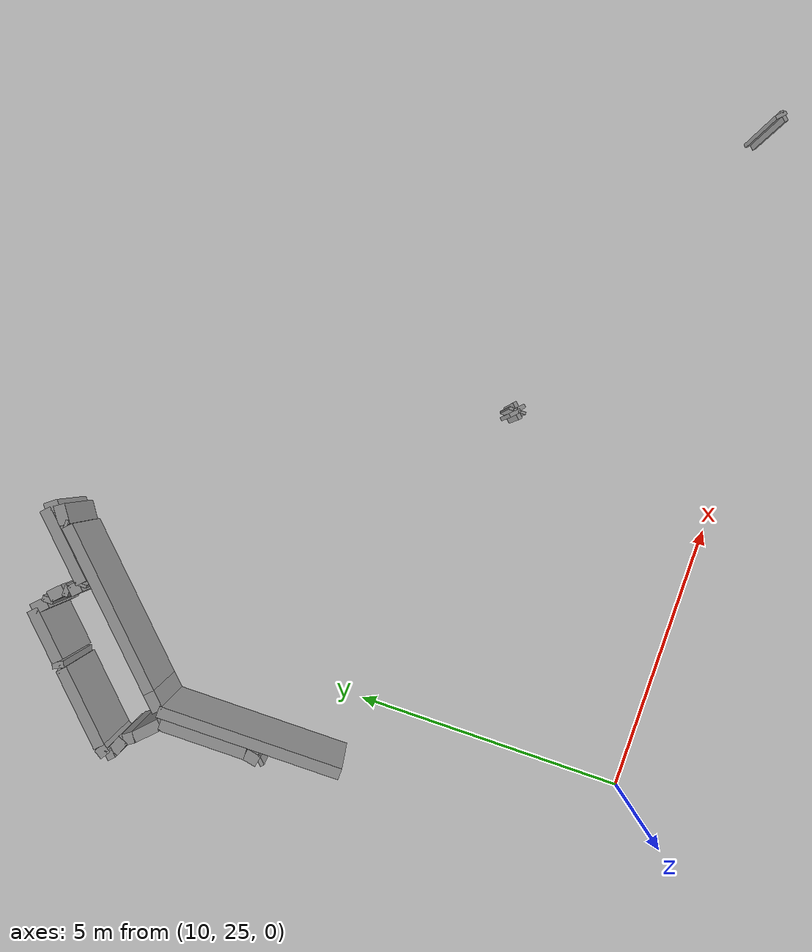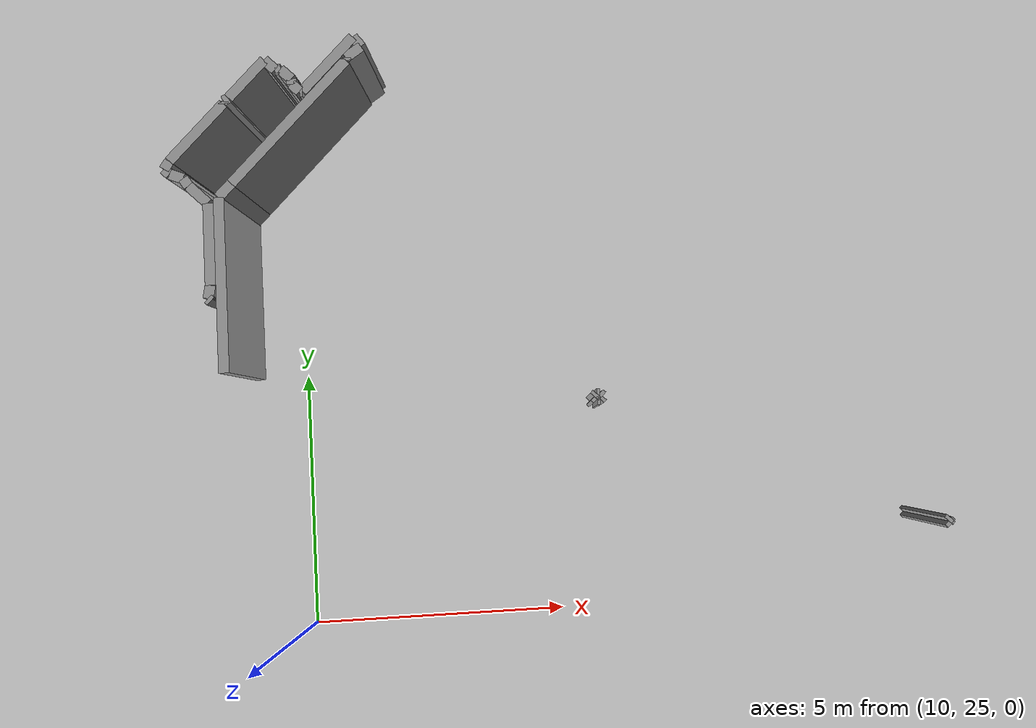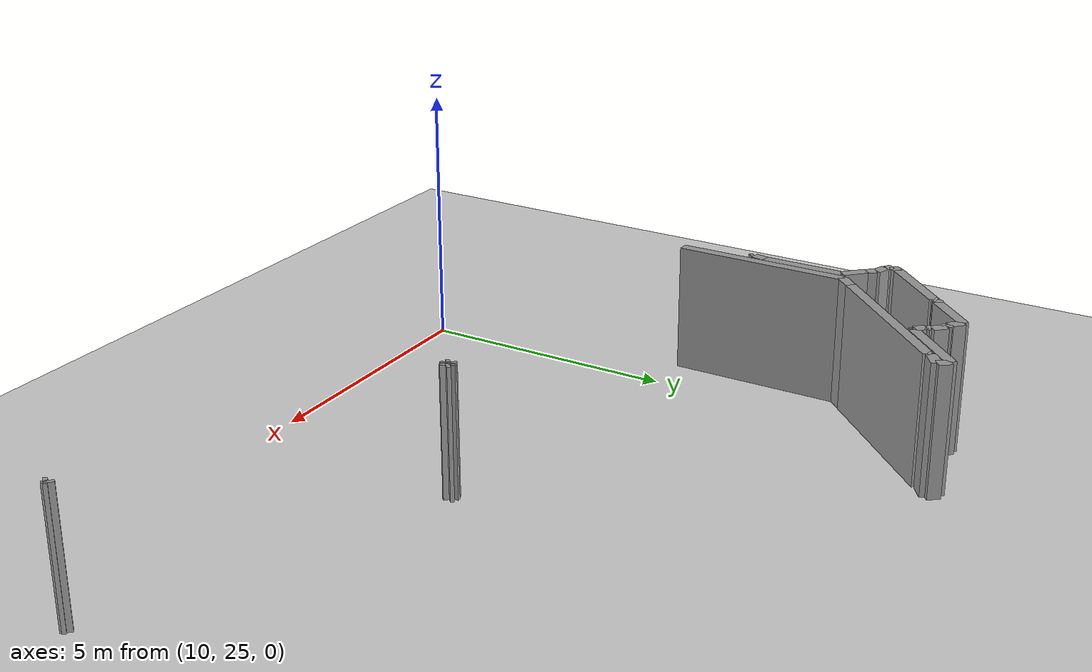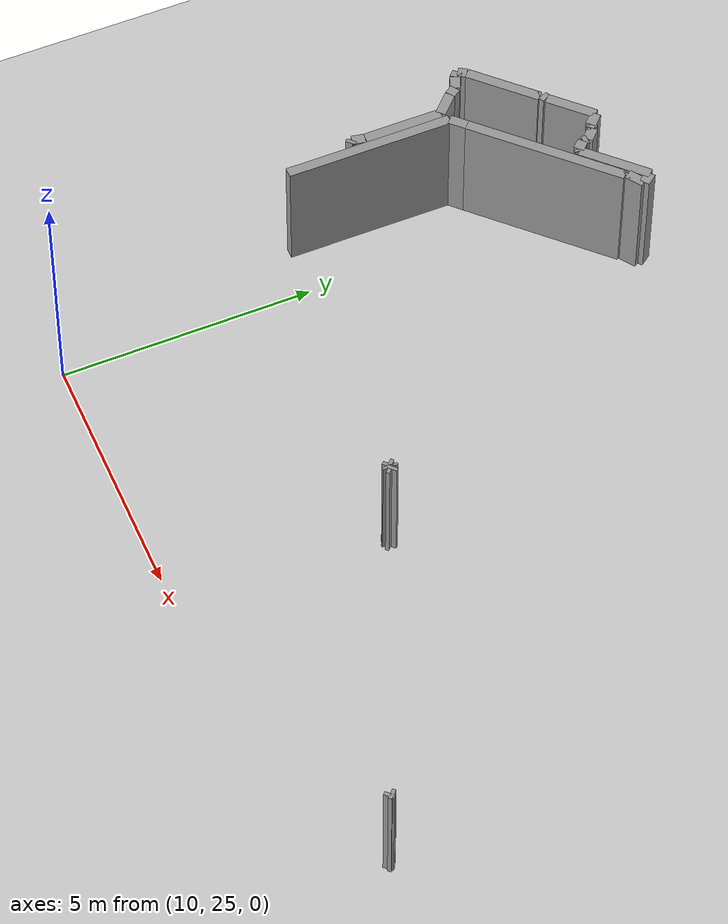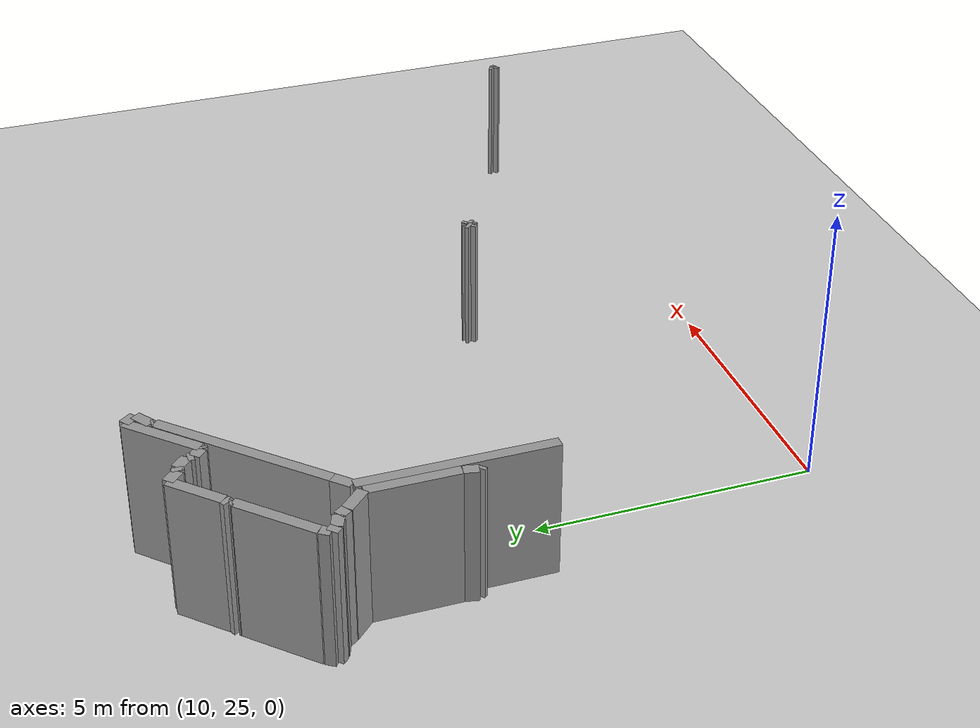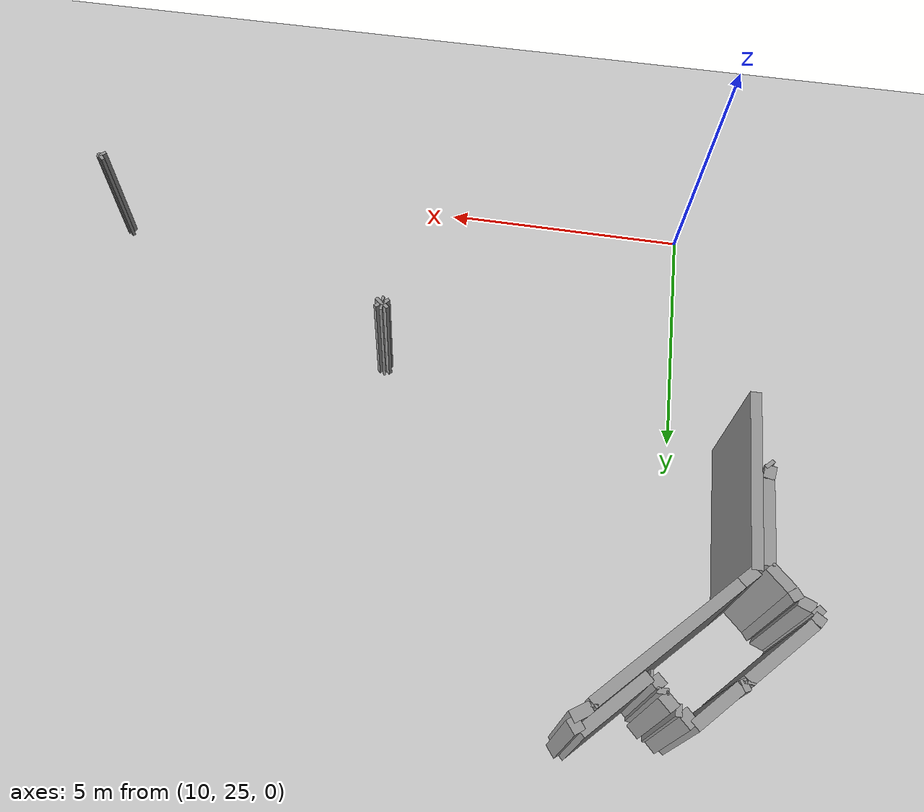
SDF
<sdf version="1.4">
 <world name="1_wall">
  <model name="ground_plane">
   <static>1</static>
   <link name="link">
    <collision name="collision">
     <geometry><plane><normal>0 0 1</normal><size>1000 1000</size></plane></geometry>
     <surface><friction><ode><mu>100</mu><mu2>50</mu2></ode></friction></surface>
    </collision>
    <visual name="visual">
     <cast_shadows>0</cast_shadows>
     <geometry><plane><normal>0 0 1</normal><size>10000 10000</size></plane></geometry>
     <material>
      <script><uri>file://media/materials/scripts/gazebo.material</uri><name>Gazebo/Grey</name></script>
     </material>
    </visual>
    <velocity_decay><linear>0</linear><angular>0</angular></velocity_decay>
   </link>
  </model>
  <model name="Wall_530">
   <static>1</static>
   <link name="Wall_530">
    <collision name="Wall_Collision_530">
     <geometry><box><size>3.3000000000000043 0.2 2.5</size></box></geometry>
     <pose>0 0 1.25 0 -0 0</pose>
    </collision>
    <visual name="Wall_Visual_530">
     <pose>0 0 1.25 0 -0 0</pose>
     <geometry><box><size>3.3000000000000043 0.2 2.5</size></box></geometry>
     <material>
      <script><uri>file://media/materials/scripts/gazebo.material</uri><name>Gazebo/Grey</name></script>
     </material>
    </visual>
    <velocity_decay><linear>0</linear><angular>0</angular></velocity_decay>
    <pose>9.0 31.650000000000002 0 0 0 1.5707963267948966</pose>
   </link>
  </model>
  <model name="Wall_531">
   <static>1</static>
   <link name="Wall_531">
    <collision name="Wall_Collision_531">
     <geometry><box><size>0.3535533905932738 0.2 2.5</size></box></geometry>
     <pose>0 0 1.25 0 -0 0</pose>
    </collision>
    <visual name="Wall_Visual_531">
     <pose>0 0 1.25 0 -0 0</pose>
     <geometry><box><size>0.3535533905932738 0.2 2.5</size></box></geometry>
     <material>
      <script><uri>file://media/materials/scripts/gazebo.material</uri><name>Gazebo/Grey</name></script>
     </material>
    </visual>
    <velocity_decay><linear>0</linear><angular>0</angular></velocity_decay>
    <pose>9.125 33.425000000000004 0 0 0 0.7853981633974483</pose>
   </link>
  </model>
  <model name="Wall_532">
   <static>1</static>
   <link name="Wall_532">
    <collision name="Wall_Collision_532">
     <geometry><box><size>3.181980515339464 0.2 2.5</size></box></geometry>
     <pose>0 0 1.25 0 -0 0</pose>
    </collision>
    <visual name="Wall_Visual_532">
     <pose>0 0 1.25 0 -0 0</pose>
     <geometry><box><size>3.181980515339464 0.2 2.5</size></box></geometry>
     <material>
      <script><uri>file://media/materials/scripts/gazebo.material</uri><name>Gazebo/Grey</name></script>
     </material>
    </visual>
    <velocity_decay><linear>0</linear><angular>0</angular></velocity_decay>
    <pose>10.375 34.675000000000004 0 0 0 0.7853981633974483</pose>
   </link>
  </model>
  <model name="Wall_533">
   <static>1</static>
   <link name="Wall_533">
    <collision name="Wall_Collision_533">
     <geometry><box><size>0.04999999999999716 0.2 2.5</size></box></geometry>
     <pose>0 0 1.25 0 -0 0</pose>
    </collision>
    <visual name="Wall_Visual_533">
     <pose>0 0 1.25 0 -0 0</pose>
     <geometry><box><size>0.04999999999999716 0.2 2.5</size></box></geometry>
     <material>
      <script><uri>file://media/materials/scripts/gazebo.material</uri><name>Gazebo/Grey</name></script>
     </material>
    </visual>
    <velocity_decay><linear>0</linear><angular>0</angular></velocity_decay>
    <pose>11.5 35.825 0 0 0 1.5707963267948966</pose>
   </link>
  </model>
  <model name="Wall_534">
   <static>1</static>
   <link name="Wall_534">
    <collision name="Wall_Collision_534">
     <geometry><box><size>0.36055512754640107 0.2 2.5</size></box></geometry>
     <pose>0 0 1.25 0 -0 0</pose>
    </collision>
    <visual name="Wall_Visual_534">
     <pose>0 0 1.25 0 -0 0</pose>
     <geometry><box><size>0.36055512754640107 0.2 2.5</size></box></geometry>
     <material>
      <script><uri>file://media/materials/scripts/gazebo.material</uri><name>Gazebo/Grey</name></script>
     </material>
    </visual>
    <velocity_decay><linear>0</linear><angular>0</angular></velocity_decay>
    <pose>11.65 35.95 0 0 0 0.588002603547573</pose>
   </link>
  </model>
  <model name="Wall_535">
   <static>1</static>
   <link name="Wall_535">
    <collision name="Wall_Collision_535">
     <geometry><box><size>0.2499999999999968 0.2 2.5</size></box></geometry>
     <pose>0 0 1.25 0 -0 0</pose>
    </collision>
    <visual name="Wall_Visual_535">
     <pose>0 0 1.25 0 -0 0</pose>
     <geometry><box><size>0.2499999999999968 0.2 2.5</size></box></geometry>
     <material>
      <script><uri>file://media/materials/scripts/gazebo.material</uri><name>Gazebo/Grey</name></script>
     </material>
    </visual>
    <velocity_decay><linear>0</linear><angular>0</angular></velocity_decay>
    <pose>11.725000000000001 36.150000000000006 0 0 0 2.2142974355881924</pose>
   </link>
  </model>
  <model name="Wall_536">
   <static>1</static>
   <link name="Wall_536">
    <collision name="Wall_Collision_536">
     <geometry><box><size>1.4142135623730951 0.2 2.5</size></box></geometry>
     <pose>0 0 1.25 0 -0 0</pose>
    </collision>
    <visual name="Wall_Visual_536">
     <pose>0 0 1.25 0 -0 0</pose>
     <geometry><box><size>1.4142135623730951 0.2 2.5</size></box></geometry>
     <material>
      <script><uri>file://media/materials/scripts/gazebo.material</uri><name>Gazebo/Grey</name></script>
     </material>
    </visual>
    <velocity_decay><linear>0</linear><angular>0</angular></velocity_decay>
    <pose>11.15 35.75 0 0 0 -2.356194490192345</pose>
   </link>
  </model>
  <model name="Wall_537">
   <static>1</static>
   <link name="Wall_537">
    <collision name="Wall_Collision_537">
     <geometry><box><size>0.049999999999998934 0.2 2.5</size></box></geometry>
     <pose>0 0 1.25 0 -0 0</pose>
    </collision>
    <visual name="Wall_Visual_537">
     <pose>0 0 1.25 0 -0 0</pose>
     <geometry><box><size>0.049999999999998934 0.2 2.5</size></box></geometry>
     <material>
      <script><uri>file://media/materials/scripts/gazebo.material</uri><name>Gazebo/Grey</name></script>
     </material>
    </visual>
    <velocity_decay><linear>0</linear><angular>0</angular></velocity_decay>
    <pose>10.625 35.25 0 0 0 3.141592653589793</pose>
   </link>
  </model>
  <model name="Wall_538">
   <static>1</static>
   <link name="Wall_538">
    <collision name="Wall_Collision_538">
     <geometry><box><size>0.2121320343559635 0.2 2.5</size></box></geometry>
     <pose>0 0 1.25 0 -0 0</pose>
    </collision>
    <visual name="Wall_Visual_538">
     <pose>0 0 1.25 0 -0 0</pose>
     <geometry><box><size>0.2121320343559635 0.2 2.5</size></box></geometry>
     <material>
      <script><uri>file://media/materials/scripts/gazebo.material</uri><name>Gazebo/Grey</name></script>
     </material>
    </visual>
    <velocity_decay><linear>0</linear><angular>0</angular></velocity_decay>
    <pose>10.525000000000002 35.325 0 0 0 2.356194490192351</pose>
   </link>
  </model>
  <model name="Wall_539">
   <static>1</static>
   <link name="Wall_539">
    <collision name="Wall_Collision_539">
     <geometry><box><size>0.10000000000000142 0.2 2.5</size></box></geometry>
     <pose>0 0 1.25 0 -0 0</pose>
    </collision>
    <visual name="Wall_Visual_539">
     <pose>0 0 1.25 0 -0 0</pose>
     <geometry><box><size>0.10000000000000142 0.2 2.5</size></box></geometry>
     <material>
      <script><uri>file://media/materials/scripts/gazebo.material</uri><name>Gazebo/Grey</name></script>
     </material>
    </visual>
    <velocity_decay><linear>0</linear><angular>0</angular></velocity_decay>
    <pose>10.450000000000001 35.45 0 0 0 1.5707963267948966</pose>
   </link>
  </model>
  <model name="Wall_540">
   <static>1</static>
   <link name="Wall_540">
    <collision name="Wall_Collision_540">
     <geometry><box><size>0.2828427124746218 0.2 2.5</size></box></geometry>
     <pose>0 0 1.25 0 -0 0</pose>
    </collision>
    <visual name="Wall_Visual_540">
     <pose>0 0 1.25 0 -0 0</pose>
     <geometry><box><size>0.2828427124746218 0.2 2.5</size></box></geometry>
     <material>
      <script><uri>file://media/materials/scripts/gazebo.material</uri><name>Gazebo/Grey</name></script>
     </material>
    </visual>
    <velocity_decay><linear>0</linear><angular>0</angular></velocity_decay>
    <pose>10.350000000000001 35.6 0 0 0 2.3561944901923404</pose>
   </link>
  </model>
  <model name="Wall_541">
   <static>1</static>
   <link name="Wall_541">
    <collision name="Wall_Collision_541">
     <geometry><box><size>0.09999999999999964 0.2 2.5</size></box></geometry>
     <pose>0 0 1.25 0 -0 0</pose>
    </collision>
    <visual name="Wall_Visual_541">
     <pose>0 0 1.25 0 -0 0</pose>
     <geometry><box><size>0.09999999999999964 0.2 2.5</size></box></geometry>
     <material>
      <script><uri>file://media/materials/scripts/gazebo.material</uri><name>Gazebo/Grey</name></script>
     </material>
    </visual>
    <velocity_decay><linear>0</linear><angular>0</angular></velocity_decay>
    <pose>10.2 35.7 0 0 0 3.141592653589793</pose>
   </link>
  </model>
  <model name="Wall_542">
   <static>1</static>
   <link name="Wall_542">
    <collision name="Wall_Collision_542">
     <geometry><box><size>0.2828427124746155 0.2 2.5</size></box></geometry>
     <pose>0 0 1.25 0 -0 0</pose>
    </collision>
    <visual name="Wall_Visual_542">
     <pose>0 0 1.25 0 -0 0</pose>
     <geometry><box><size>0.2828427124746155 0.2 2.5</size></box></geometry>
     <material>
      <script><uri>file://media/materials/scripts/gazebo.material</uri><name>Gazebo/Grey</name></script>
     </material>
    </visual>
    <velocity_decay><linear>0</linear><angular>0</angular></velocity_decay>
    <pose>10.05 35.8 0 0 0 2.3561944901923537</pose>
   </link>
  </model>
  <model name="Wall_543">
   <static>1</static>
   <link name="Wall_543">
    <collision name="Wall_Collision_543">
     <geometry><box><size>0.9899494936611642 0.2 2.5</size></box></geometry>
     <pose>0 0 1.25 0 -0 0</pose>
    </collision>
    <visual name="Wall_Visual_543">
     <pose>0 0 1.25 0 -0 0</pose>
     <geometry><box><size>0.9899494936611642 0.2 2.5</size></box></geometry>
     <material>
      <script><uri>file://media/materials/scripts/gazebo.material</uri><name>Gazebo/Grey</name></script>
     </material>
    </visual>
    <velocity_decay><linear>0</linear><angular>0</angular></velocity_decay>
    <pose>9.600000000000001 35.55 0 0 0 -2.356194490192349</pose>
   </link>
  </model>
  <model name="Wall_544">
   <static>1</static>
   <link name="Wall_544">
    <collision name="Wall_Collision_544">
     <geometry><box><size>0.11180339887499106 0.2 2.5</size></box></geometry>
     <pose>0 0 1.25 0 -0 0</pose>
    </collision>
    <visual name="Wall_Visual_544">
     <pose>0 0 1.25 0 -0 0</pose>
     <geometry><box><size>0.11180339887499106 0.2 2.5</size></box></geometry>
     <material>
      <script><uri>file://media/materials/scripts/gazebo.material</uri><name>Gazebo/Grey</name></script>
     </material>
    </visual>
    <velocity_decay><linear>0</linear><angular>0</angular></velocity_decay>
    <pose>9.2 35.175 0 0 0 -2.6779450445889514</pose>
   </link>
  </model>
  <model name="Wall_545">
   <static>1</static>
   <link name="Wall_545">
    <collision name="Wall_Collision_545">
     <geometry><box><size>0.04999999999999716 0.2 2.5</size></box></geometry>
     <pose>0 0 1.25 0 -0 0</pose>
    </collision>
    <visual name="Wall_Visual_545">
     <pose>0 0 1.25 0 -0 0</pose>
     <geometry><box><size>0.04999999999999716 0.2 2.5</size></box></geometry>
     <material>
      <script><uri>file://media/materials/scripts/gazebo.material</uri><name>Gazebo/Grey</name></script>
     </material>
    </visual>
    <velocity_decay><linear>0</linear><angular>0</angular></velocity_decay>
    <pose>9.15 35.125 0 0 0 -1.5707963267948966</pose>
   </link>
  </model>
  <model name="Wall_546">
   <static>1</static>
   <link name="Wall_546">
    <collision name="Wall_Collision_546">
     <geometry><box><size>1.4849242404917484 0.2 2.5</size></box></geometry>
     <pose>0 0 1.25 0 -0 0</pose>
    </collision>
    <visual name="Wall_Visual_546">
     <pose>0 0 1.25 0 -0 0</pose>
     <geometry><box><size>1.4849242404917484 0.2 2.5</size></box></geometry>
     <material>
      <script><uri>file://media/materials/scripts/gazebo.material</uri><name>Gazebo/Grey</name></script>
     </material>
    </visual>
    <velocity_decay><linear>0</linear><angular>0</angular></velocity_decay>
    <pose>8.625 34.575 0 0 0 -2.3561944901923466</pose>
   </link>
  </model>
  <model name="Wall_547">
   <static>1</static>
   <link name="Wall_547">
    <collision name="Wall_Collision_547">
     <geometry><box><size>0.180277563773204 0.2 2.5</size></box></geometry>
     <pose>0 0 1.25 0 -0 0</pose>
    </collision>
    <visual name="Wall_Visual_547">
     <pose>0 0 1.25 0 -0 0</pose>
     <geometry><box><size>0.180277563773204 0.2 2.5</size></box></geometry>
     <material>
      <script><uri>file://media/materials/scripts/gazebo.material</uri><name>Gazebo/Grey</name></script>
     </material>
    </visual>
    <velocity_decay><linear>0</linear><angular>0</angular></velocity_decay>
    <pose>8.05 33.975 0 0 0 -2.158798930342445</pose>
   </link>
  </model>
  <model name="Wall_548">
   <static>1</static>
   <link name="Wall_548">
    <collision name="Wall_Collision_548">
     <geometry><box><size>0.14142135623730523 0.2 2.5</size></box></geometry>
     <pose>0 0 1.25 0 -0 0</pose>
    </collision>
    <visual name="Wall_Visual_548">
     <pose>0 0 1.25 0 -0 0</pose>
     <geometry><box><size>0.14142135623730523 0.2 2.5</size></box></geometry>
     <material>
      <script><uri>file://media/materials/scripts/gazebo.material</uri><name>Gazebo/Grey</name></script>
     </material>
    </visual>
    <velocity_decay><linear>0</linear><angular>0</angular></velocity_decay>
    <pose>8.05 33.85 0 0 0 -0.7853981633974216</pose>
   </link>
  </model>
  <model name="Wall_549">
   <static>1</static>
   <link name="Wall_549">
    <collision name="Wall_Collision_549">
     <geometry><box><size>0.26925824035672574 0.2 2.5</size></box></geometry>
     <pose>0 0 1.25 0 -0 0</pose>
    </collision>
    <visual name="Wall_Visual_549">
     <pose>0 0 1.25 0 -0 0</pose>
     <geometry><box><size>0.26925824035672574 0.2 2.5</size></box></geometry>
     <material>
      <script><uri>file://media/materials/scripts/gazebo.material</uri><name>Gazebo/Grey</name></script>
     </material>
    </visual>
    <velocity_decay><linear>0</linear><angular>0</angular></velocity_decay>
    <pose>8.225 33.75 0 0 0 -0.3805063771123698</pose>
   </link>
  </model>
  <model name="Wall_550">
   <static>1</static>
   <link name="Wall_550">
    <collision name="Wall_Collision_550">
     <geometry><box><size>0.18027756377319906 0.2 2.5</size></box></geometry>
     <pose>0 0 1.25 0 -0 0</pose>
    </collision>
    <visual name="Wall_Visual_550">
     <pose>0 0 1.25 0 -0 0</pose>
     <geometry><box><size>0.18027756377319906 0.2 2.5</size></box></geometry>
     <material>
      <script><uri>file://media/materials/scripts/gazebo.material</uri><name>Gazebo/Grey</name></script>
     </material>
    </visual>
    <velocity_decay><linear>0</linear><angular>0</angular></velocity_decay>
    <pose>8.4 33.625 0 0 0 -0.9827937232473182</pose>
   </link>
  </model>
  <model name="Wall_551">
   <static>1</static>
   <link name="Wall_551">
    <collision name="Wall_Collision_551">
     <geometry><box><size>0.494974746830584 0.2 2.5</size></box></geometry>
     <pose>0 0 1.25 0 -0 0</pose>
    </collision>
    <visual name="Wall_Visual_551">
     <pose>0 0 1.25 0 -0 0</pose>
     <geometry><box><size>0.494974746830584 0.2 2.5</size></box></geometry>
     <material>
      <script><uri>file://media/materials/scripts/gazebo.material</uri><name>Gazebo/Grey</name></script>
     </material>
    </visual>
    <velocity_decay><linear>0</linear><angular>0</angular></velocity_decay>
    <pose>8.625 33.375 0 0 0 -0.7853981633974508</pose>
   </link>
  </model>
  <model name="Wall_552">
   <static>1</static>
   <link name="Wall_552">
    <collision name="Wall_Collision_552">
     <geometry><box><size>1.5500000000000007 0.2 2.5</size></box></geometry>
     <pose>0 0 1.25 0 -0 0</pose>
    </collision>
    <visual name="Wall_Visual_552">
     <pose>0 0 1.25 0 -0 0</pose>
     <geometry><box><size>1.5500000000000007 0.2 2.5</size></box></geometry>
     <material>
      <script><uri>file://media/materials/scripts/gazebo.material</uri><name>Gazebo/Grey</name></script>
     </material>
    </visual>
    <velocity_decay><linear>0</linear><angular>0</angular></velocity_decay>
    <pose>8.8 32.425000000000004 0 0 0 -1.5707963267948966</pose>
   </link>
  </model>
  <model name="Wall_553">
   <static>1</static>
   <link name="Wall_553">
    <collision name="Wall_Collision_553">
     <geometry><box><size>0.25495097567963937 0.2 2.5</size></box></geometry>
     <pose>0 0 1.25 0 -0 0</pose>
    </collision>
    <visual name="Wall_Visual_553">
     <pose>0 0 1.25 0 -0 0</pose>
     <geometry><box><size>0.25495097567963937 0.2 2.5</size></box></geometry>
     <material>
      <script><uri>file://media/materials/scripts/gazebo.material</uri><name>Gazebo/Grey</name></script>
     </material>
    </visual>
    <velocity_decay><linear>0</linear><angular>0</angular></velocity_decay>
    <pose>8.775 31.525000000000002 0 0 0 -1.76819188664478</pose>
   </link>
  </model>
  <model name="Wall_554">
   <static>1</static>
   <link name="Wall_554">
    <collision name="Wall_Collision_554">
     <geometry><box><size>0.07071067811865576 0.2 2.5</size></box></geometry>
     <pose>0 0 1.25 0 -0 0</pose>
    </collision>
    <visual name="Wall_Visual_554">
     <pose>0 0 1.25 0 -0 0</pose>
     <geometry><box><size>0.07071067811865576 0.2 2.5</size></box></geometry>
     <material>
      <script><uri>file://media/materials/scripts/gazebo.material</uri><name>Gazebo/Grey</name></script>
     </material>
    </visual>
    <velocity_decay><linear>0</linear><angular>0</angular></velocity_decay>
    <pose>8.775 31.375 0 0 0 -0.7853981633974483</pose>
   </link>
  </model>
  <model name="Wall_555">
   <static>1</static>
   <link name="Wall_555">
    <collision name="Wall_Collision_555">
     <geometry><box><size>0.07071067811865576 0.2 2.5</size></box></geometry>
     <pose>0 0 1.25 0 -0 0</pose>
    </collision>
    <visual name="Wall_Visual_555">
     <pose>0 0 1.25 0 -0 0</pose>
     <geometry><box><size>0.07071067811865576 0.2 2.5</size></box></geometry>
     <material>
      <script><uri>file://media/materials/scripts/gazebo.material</uri><name>Gazebo/Grey</name></script>
     </material>
    </visual>
    <velocity_decay><linear>0</linear><angular>0</angular></velocity_decay>
    <pose>15.825000000000001 29.175000000000004 0 0 0 -2.356194490192345</pose>
   </link>
  </model>
  <model name="Wall_556">
   <static>1</static>
   <link name="Wall_556">
    <collision name="Wall_Collision_556">
     <geometry><box><size>0.07071067811865576 0.2 2.5</size></box></geometry>
     <pose>0 0 1.25 0 -0 0</pose>
    </collision>
    <visual name="Wall_Visual_556">
     <pose>0 0 1.25 0 -0 0</pose>
     <geometry><box><size>0.07071067811865576 0.2 2.5</size></box></geometry>
     <material>
      <script><uri>file://media/materials/scripts/gazebo.material</uri><name>Gazebo/Grey</name></script>
     </material>
    </visual>
    <velocity_decay><linear>0</linear><angular>0</angular></velocity_decay>
    <pose>15.825000000000001 29.125 0 0 0 -0.7853981633974483</pose>
   </link>
  </model>
  <model name="Wall_557">
   <static>1</static>
   <link name="Wall_557">
    <collision name="Wall_Collision_557">
     <geometry><box><size>0.049999999999998934 0.2 2.5</size></box></geometry>
     <pose>0 0 1.25 0 -0 0</pose>
    </collision>
    <visual name="Wall_Visual_557">
     <pose>0 0 1.25 0 -0 0</pose>
     <geometry><box><size>0.049999999999998934 0.2 2.5</size></box></geometry>
     <material>
      <script><uri>file://media/materials/scripts/gazebo.material</uri><name>Gazebo/Grey</name></script>
     </material>
    </visual>
    <velocity_decay><linear>0</linear><angular>0</angular></velocity_decay>
    <pose>15.875 29.1 0 0 0 0.0</pose>
   </link>
  </model>
  <model name="Wall_558">
   <static>1</static>
   <link name="Wall_558">
    <collision name="Wall_Collision_558">
     <geometry><box><size>0.07071067811865576 0.2 2.5</size></box></geometry>
     <pose>0 0 1.25 0 -0 0</pose>
    </collision>
    <visual name="Wall_Visual_558">
     <pose>0 0 1.25 0 -0 0</pose>
     <geometry><box><size>0.07071067811865576 0.2 2.5</size></box></geometry>
     <material>
      <script><uri>file://media/materials/scripts/gazebo.material</uri><name>Gazebo/Grey</name></script>
     </material>
    </visual>
    <velocity_decay><linear>0</linear><angular>0</angular></velocity_decay>
    <pose>15.925 29.125 0 0 0 0.7853981633974483</pose>
   </link>
  </model>
  <model name="Wall_559">
   <static>1</static>
   <link name="Wall_559">
    <collision name="Wall_Collision_559">
     <geometry><box><size>0.07071067811865576 0.2 2.5</size></box></geometry>
     <pose>0 0 1.25 0 -0 0</pose>
    </collision>
    <visual name="Wall_Visual_559">
     <pose>0 0 1.25 0 -0 0</pose>
     <geometry><box><size>0.07071067811865576 0.2 2.5</size></box></geometry>
     <material>
      <script><uri>file://media/materials/scripts/gazebo.material</uri><name>Gazebo/Grey</name></script>
     </material>
    </visual>
    <velocity_decay><linear>0</linear><angular>0</angular></velocity_decay>
    <pose>15.925 29.175000000000004 0 0 0 2.356194490192345</pose>
   </link>
  </model>
  <model name="Wall_560">
   <static>1</static>
   <link name="Wall_560">
    <collision name="Wall_Collision_560">
     <geometry><box><size>0.049999999999998934 0.2 2.5</size></box></geometry>
     <pose>0 0 1.25 0 -0 0</pose>
    </collision>
    <visual name="Wall_Visual_560">
     <pose>0 0 1.25 0 -0 0</pose>
     <geometry><box><size>0.049999999999998934 0.2 2.5</size></box></geometry>
     <material>
      <script><uri>file://media/materials/scripts/gazebo.material</uri><name>Gazebo/Grey</name></script>
     </material>
    </visual>
    <velocity_decay><linear>0</linear><angular>0</angular></velocity_decay>
    <pose>15.875 29.200000000000003 0 0 0 3.141592653589793</pose>
   </link>
  </model>
  <model name="Wall_561">
   <static>1</static>
   <link name="Wall_561">
    <collision name="Wall_Collision_561">
     <geometry><box><size>0.07071067811865576 0.2 2.5</size></box></geometry>
     <pose>0 0 1.25 0 -0 0</pose>
    </collision>
    <visual name="Wall_Visual_561">
     <pose>0 0 1.25 0 -0 0</pose>
     <geometry><box><size>0.07071067811865576 0.2 2.5</size></box></geometry>
     <material>
      <script><uri>file://media/materials/scripts/gazebo.material</uri><name>Gazebo/Grey</name></script>
     </material>
    </visual>
    <velocity_decay><linear>0</linear><angular>0</angular></velocity_decay>
    <pose>22.125 26.525 0 0 0 -2.356194490192345</pose>
   </link>
  </model>
  <model name="Wall_562">
   <static>1</static>
   <link name="Wall_562">
    <collision name="Wall_Collision_562">
     <geometry><box><size>0.07071067811865325 0.2 2.5</size></box></geometry>
     <pose>0 0 1.25 0 -0 0</pose>
    </collision>
    <visual name="Wall_Visual_562">
     <pose>0 0 1.25 0 -0 0</pose>
     <geometry><box><size>0.07071067811865325 0.2 2.5</size></box></geometry>
     <material>
      <script><uri>file://media/materials/scripts/gazebo.material</uri><name>Gazebo/Grey</name></script>
     </material>
    </visual>
    <velocity_decay><linear>0</linear><angular>0</angular></velocity_decay>
    <pose>22.125 26.475 0 0 0 -0.7853981633974128</pose>
   </link>
  </model>
 </world>
</sdf>
